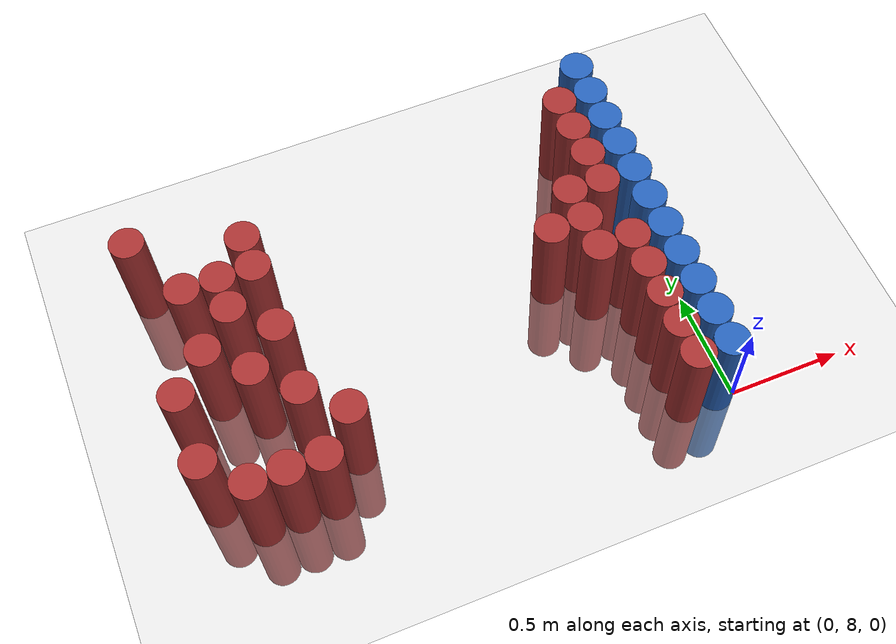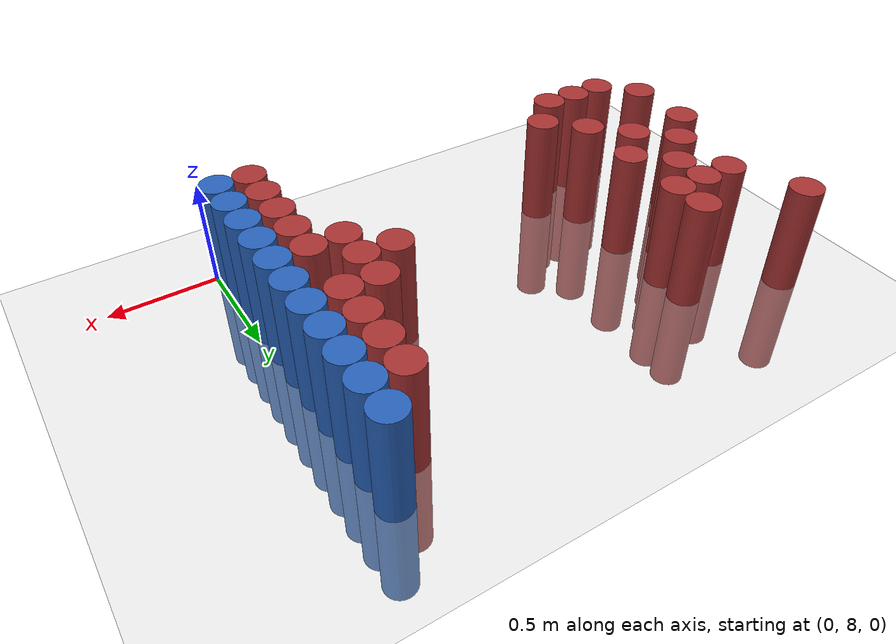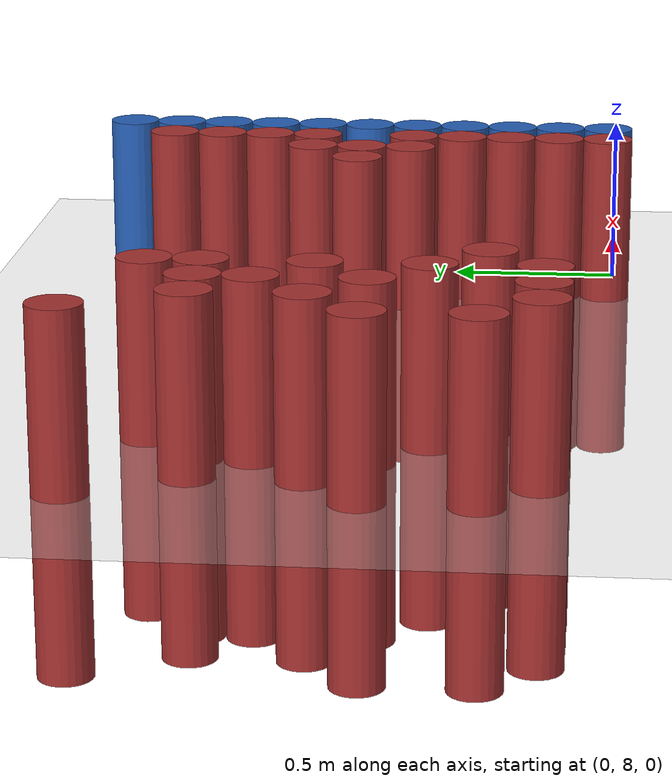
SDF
<sdf version="1.6">
 <world name="default">
  <model name="ground_plane">
   <static>1</static>
   <link name="link">
    <collision name="collision">
     <geometry><plane><normal>0 0 1</normal><size>100 100</size></plane></geometry>
     <surface><friction><ode><mu>100</mu><mu2>50</mu2></ode></friction></surface>
    </collision>
    <visual name="visual">
     <cast_shadows>0</cast_shadows>
     <geometry><plane><normal>0 0 1</normal><size>100 100</size></plane></geometry>
     <material>
      <script><uri>file://media/materials/scripts/gazebo.material</uri><name>Gazebo/Grey</name></script>
     </material>
    </visual>
   </link>
  </model>
  <model name="unit_cylinder_205">
   <static>1</static>
   <pose>-2.175000 8.325000 0.000000 0.000000 0.000000 0.000000</pose>
   <link name="link">
    <inertial>
     <mass>1</mass>
     <inertia><ixx>0.145833</ixx><ixy>0</ixy><ixz>0</ixz><iyy>0.145833</iyy><iyz>0</iyz><izz>0.125</izz></inertia>
    </inertial>
    <collision name="collision">
     <geometry><cylinder><radius>0.075000</radius><length>1</length></cylinder></geometry>
    </collision>
    <visual name="visual">
     <geometry><cylinder><radius>0.075000</radius><length>1</length></cylinder></geometry>
     <material>
      <ambient>0.648000 0.192000 0.192000 1</ambient>
      <diffuse>0.648000 0.192000 0.192000 1</diffuse>
     </material>
     <material>
      <script><name>Gazebo/Grey</name><uri>file://media/materials/scripts/gazebo.material</uri></script>
     </material>
    </visual>
    <sensor name="sensor_contact" type="contact"><contact><collision>collision</collision></contact></sensor>
   </link>
   <plugin filename="gz-sim-touchplugin-system" name="gz::sim::systems::TouchPlugin">
    <target>robot</target>
    <namespace>robot</namespace>
    <time>0.001</time>
    <enabled>true</enabled>
   </plugin>
  </model>
  <model name="unit_cylinder_206">
   <static>1</static>
   <pose>-2.175000 8.625000 0.000000 0.000000 0.000000 0.000000</pose>
   <link name="link">
    <inertial>
     <mass>1</mass>
     <inertia><ixx>0.145833</ixx><ixy>0</ixy><ixz>0</ixz><iyy>0.145833</iyy><iyz>0</iyz><izz>0.125</izz></inertia>
    </inertial>
    <collision name="collision">
     <geometry><cylinder><radius>0.075000</radius><length>1</length></cylinder></geometry>
    </collision>
    <visual name="visual">
     <geometry><cylinder><radius>0.075000</radius><length>1</length></cylinder></geometry>
     <material>
      <ambient>0.648000 0.192000 0.192000 1</ambient>
      <diffuse>0.648000 0.192000 0.192000 1</diffuse>
     </material>
     <material>
      <script><name>Gazebo/Grey</name><uri>file://media/materials/scripts/gazebo.material</uri></script>
     </material>
    </visual>
    <sensor name="sensor_contact" type="contact"><contact><collision>collision</collision></contact></sensor>
   </link>
   <plugin filename="gz-sim-touchplugin-system" name="gz::sim::systems::TouchPlugin">
    <target>robot</target>
    <namespace>robot</namespace>
    <time>0.001</time>
    <enabled>true</enabled>
   </plugin>
  </model>
  <model name="unit_cylinder_207">
   <static>1</static>
   <pose>-2.175000 9.375000 0.000000 0.000000 0.000000 0.000000</pose>
   <link name="link">
    <inertial>
     <mass>1</mass>
     <inertia><ixx>0.145833</ixx><ixy>0</ixy><ixz>0</ixz><iyy>0.145833</iyy><iyz>0</iyz><izz>0.125</izz></inertia>
    </inertial>
    <collision name="collision">
     <geometry><cylinder><radius>0.075000</radius><length>1</length></cylinder></geometry>
    </collision>
    <visual name="visual">
     <geometry><cylinder><radius>0.075000</radius><length>1</length></cylinder></geometry>
     <material>
      <ambient>0.648000 0.192000 0.192000 1</ambient>
      <diffuse>0.648000 0.192000 0.192000 1</diffuse>
     </material>
     <material>
      <script><name>Gazebo/Grey</name><uri>file://media/materials/scripts/gazebo.material</uri></script>
     </material>
    </visual>
    <sensor name="sensor_contact" type="contact"><contact><collision>collision</collision></contact></sensor>
   </link>
   <plugin filename="gz-sim-touchplugin-system" name="gz::sim::systems::TouchPlugin">
    <target>robot</target>
    <namespace>robot</namespace>
    <time>0.001</time>
    <enabled>true</enabled>
   </plugin>
  </model>
  <model name="unit_cylinder_210">
   <static>1</static>
   <pose>-2.025000 8.175000 0.000000 0.000000 0.000000 0.000000</pose>
   <link name="link">
    <inertial>
     <mass>1</mass>
     <inertia><ixx>0.145833</ixx><ixy>0</ixy><ixz>0</ixz><iyy>0.145833</iyy><iyz>0</iyz><izz>0.125</izz></inertia>
    </inertial>
    <collision name="collision">
     <geometry><cylinder><radius>0.075000</radius><length>1</length></cylinder></geometry>
    </collision>
    <visual name="visual">
     <geometry><cylinder><radius>0.075000</radius><length>1</length></cylinder></geometry>
     <material>
      <ambient>0.648000 0.192000 0.192000 1</ambient>
      <diffuse>0.648000 0.192000 0.192000 1</diffuse>
     </material>
     <material>
      <script><name>Gazebo/Grey</name><uri>file://media/materials/scripts/gazebo.material</uri></script>
     </material>
    </visual>
    <sensor name="sensor_contact" type="contact"><contact><collision>collision</collision></contact></sensor>
   </link>
   <plugin filename="gz-sim-touchplugin-system" name="gz::sim::systems::TouchPlugin">
    <target>robot</target>
    <namespace>robot</namespace>
    <time>0.001</time>
    <enabled>true</enabled>
   </plugin>
  </model>
  <model name="unit_cylinder_211">
   <static>1</static>
   <pose>-2.025000 8.775000 0.000000 0.000000 0.000000 0.000000</pose>
   <link name="link">
    <inertial>
     <mass>1</mass>
     <inertia><ixx>0.145833</ixx><ixy>0</ixy><ixz>0</ixz><iyy>0.145833</iyy><iyz>0</iyz><izz>0.125</izz></inertia>
    </inertial>
    <collision name="collision">
     <geometry><cylinder><radius>0.075000</radius><length>1</length></cylinder></geometry>
    </collision>
    <visual name="visual">
     <geometry><cylinder><radius>0.075000</radius><length>1</length></cylinder></geometry>
     <material>
      <ambient>0.648000 0.192000 0.192000 1</ambient>
      <diffuse>0.648000 0.192000 0.192000 1</diffuse>
     </material>
     <material>
      <script><name>Gazebo/Grey</name><uri>file://media/materials/scripts/gazebo.material</uri></script>
     </material>
    </visual>
    <sensor name="sensor_contact" type="contact"><contact><collision>collision</collision></contact></sensor>
   </link>
   <plugin filename="gz-sim-touchplugin-system" name="gz::sim::systems::TouchPlugin">
    <target>robot</target>
    <namespace>robot</namespace>
    <time>0.001</time>
    <enabled>true</enabled>
   </plugin>
  </model>
  <model name="unit_cylinder_212">
   <static>1</static>
   <pose>-2.025000 9.075000 0.000000 0.000000 0.000000 0.000000</pose>
   <link name="link">
    <inertial>
     <mass>1</mass>
     <inertia><ixx>0.145833</ixx><ixy>0</ixy><ixz>0</ixz><iyy>0.145833</iyy><iyz>0</iyz><izz>0.125</izz></inertia>
    </inertial>
    <collision name="collision">
     <geometry><cylinder><radius>0.075000</radius><length>1</length></cylinder></geometry>
    </collision>
    <visual name="visual">
     <geometry><cylinder><radius>0.075000</radius><length>1</length></cylinder></geometry>
     <material>
      <ambient>0.648000 0.192000 0.192000 1</ambient>
      <diffuse>0.648000 0.192000 0.192000 1</diffuse>
     </material>
     <material>
      <script><name>Gazebo/Grey</name><uri>file://media/materials/scripts/gazebo.material</uri></script>
     </material>
    </visual>
    <sensor name="sensor_contact" type="contact"><contact><collision>collision</collision></contact></sensor>
   </link>
   <plugin filename="gz-sim-touchplugin-system" name="gz::sim::systems::TouchPlugin">
    <target>robot</target>
    <namespace>robot</namespace>
    <time>0.001</time>
    <enabled>true</enabled>
   </plugin>
  </model>
  <model name="unit_cylinder_214">
   <static>1</static>
   <pose>-1.875000 8.175000 0.000000 0.000000 0.000000 0.000000</pose>
   <link name="link">
    <inertial>
     <mass>1</mass>
     <inertia><ixx>0.145833</ixx><ixy>0</ixy><ixz>0</ixz><iyy>0.145833</iyy><iyz>0</iyz><izz>0.125</izz></inertia>
    </inertial>
    <collision name="collision">
     <geometry><cylinder><radius>0.075000</radius><length>1</length></cylinder></geometry>
    </collision>
    <visual name="visual">
     <geometry><cylinder><radius>0.075000</radius><length>1</length></cylinder></geometry>
     <material>
      <ambient>0.648000 0.192000 0.192000 1</ambient>
      <diffuse>0.648000 0.192000 0.192000 1</diffuse>
     </material>
     <material>
      <script><name>Gazebo/Grey</name><uri>file://media/materials/scripts/gazebo.material</uri></script>
     </material>
    </visual>
    <sensor name="sensor_contact" type="contact"><contact><collision>collision</collision></contact></sensor>
   </link>
   <plugin filename="gz-sim-touchplugin-system" name="gz::sim::systems::TouchPlugin">
    <target>robot</target>
    <namespace>robot</namespace>
    <time>0.001</time>
    <enabled>true</enabled>
   </plugin>
  </model>
  <model name="unit_cylinder_215">
   <static>1</static>
   <pose>-1.875000 8.625000 0.000000 0.000000 0.000000 0.000000</pose>
   <link name="link">
    <inertial>
     <mass>1</mass>
     <inertia><ixx>0.145833</ixx><ixy>0</ixy><ixz>0</ixz><iyy>0.145833</iyy><iyz>0</iyz><izz>0.125</izz></inertia>
    </inertial>
    <collision name="collision">
     <geometry><cylinder><radius>0.075000</radius><length>1</length></cylinder></geometry>
    </collision>
    <visual name="visual">
     <geometry><cylinder><radius>0.075000</radius><length>1</length></cylinder></geometry>
     <material>
      <ambient>0.648000 0.192000 0.192000 1</ambient>
      <diffuse>0.648000 0.192000 0.192000 1</diffuse>
     </material>
     <material>
      <script><name>Gazebo/Grey</name><uri>file://media/materials/scripts/gazebo.material</uri></script>
     </material>
    </visual>
    <sensor name="sensor_contact" type="contact"><contact><collision>collision</collision></contact></sensor>
   </link>
   <plugin filename="gz-sim-touchplugin-system" name="gz::sim::systems::TouchPlugin">
    <target>robot</target>
    <namespace>robot</namespace>
    <time>0.001</time>
    <enabled>true</enabled>
   </plugin>
  </model>
  <model name="unit_cylinder_216">
   <static>1</static>
   <pose>-1.875000 8.925000 0.000000 0.000000 0.000000 0.000000</pose>
   <link name="link">
    <inertial>
     <mass>1</mass>
     <inertia><ixx>0.145833</ixx><ixy>0</ixy><ixz>0</ixz><iyy>0.145833</iyy><iyz>0</iyz><izz>0.125</izz></inertia>
    </inertial>
    <collision name="collision">
     <geometry><cylinder><radius>0.075000</radius><length>1</length></cylinder></geometry>
    </collision>
    <visual name="visual">
     <geometry><cylinder><radius>0.075000</radius><length>1</length></cylinder></geometry>
     <material>
      <ambient>0.648000 0.192000 0.192000 1</ambient>
      <diffuse>0.648000 0.192000 0.192000 1</diffuse>
     </material>
     <material>
      <script><name>Gazebo/Grey</name><uri>file://media/materials/scripts/gazebo.material</uri></script>
     </material>
    </visual>
    <sensor name="sensor_contact" type="contact"><contact><collision>collision</collision></contact></sensor>
   </link>
   <plugin filename="gz-sim-touchplugin-system" name="gz::sim::systems::TouchPlugin">
    <target>robot</target>
    <namespace>robot</namespace>
    <time>0.001</time>
    <enabled>true</enabled>
   </plugin>
  </model>
  <model name="unit_cylinder_217">
   <static>1</static>
   <pose>-1.875000 9.075000 0.000000 0.000000 0.000000 0.000000</pose>
   <link name="link">
    <inertial>
     <mass>1</mass>
     <inertia><ixx>0.145833</ixx><ixy>0</ixy><ixz>0</ixz><iyy>0.145833</iyy><iyz>0</iyz><izz>0.125</izz></inertia>
    </inertial>
    <collision name="collision">
     <geometry><cylinder><radius>0.075000</radius><length>1</length></cylinder></geometry>
    </collision>
    <visual name="visual">
     <geometry><cylinder><radius>0.075000</radius><length>1</length></cylinder></geometry>
     <material>
      <ambient>0.648000 0.192000 0.192000 1</ambient>
      <diffuse>0.648000 0.192000 0.192000 1</diffuse>
     </material>
     <material>
      <script><name>Gazebo/Grey</name><uri>file://media/materials/scripts/gazebo.material</uri></script>
     </material>
    </visual>
    <sensor name="sensor_contact" type="contact"><contact><collision>collision</collision></contact></sensor>
   </link>
   <plugin filename="gz-sim-touchplugin-system" name="gz::sim::systems::TouchPlugin">
    <target>robot</target>
    <namespace>robot</namespace>
    <time>0.001</time>
    <enabled>true</enabled>
   </plugin>
  </model>
  <model name="unit_cylinder_220">
   <static>1</static>
   <pose>-1.725000 8.175000 0.000000 0.000000 0.000000 0.000000</pose>
   <link name="link">
    <inertial>
     <mass>1</mass>
     <inertia><ixx>0.145833</ixx><ixy>0</ixy><ixz>0</ixz><iyy>0.145833</iyy><iyz>0</iyz><izz>0.125</izz></inertia>
    </inertial>
    <collision name="collision">
     <geometry><cylinder><radius>0.075000</radius><length>1</length></cylinder></geometry>
    </collision>
    <visual name="visual">
     <geometry><cylinder><radius>0.075000</radius><length>1</length></cylinder></geometry>
     <material>
      <ambient>0.648000 0.192000 0.192000 1</ambient>
      <diffuse>0.648000 0.192000 0.192000 1</diffuse>
     </material>
     <material>
      <script><name>Gazebo/Grey</name><uri>file://media/materials/scripts/gazebo.material</uri></script>
     </material>
    </visual>
    <sensor name="sensor_contact" type="contact"><contact><collision>collision</collision></contact></sensor>
   </link>
   <plugin filename="gz-sim-touchplugin-system" name="gz::sim::systems::TouchPlugin">
    <target>robot</target>
    <namespace>robot</namespace>
    <time>0.001</time>
    <enabled>true</enabled>
   </plugin>
  </model>
  <model name="unit_cylinder_221">
   <static>1</static>
   <pose>-1.725000 8.475000 0.000000 0.000000 0.000000 0.000000</pose>
   <link name="link">
    <inertial>
     <mass>1</mass>
     <inertia><ixx>0.145833</ixx><ixy>0</ixy><ixz>0</ixz><iyy>0.145833</iyy><iyz>0</iyz><izz>0.125</izz></inertia>
    </inertial>
    <collision name="collision">
     <geometry><cylinder><radius>0.075000</radius><length>1</length></cylinder></geometry>
    </collision>
    <visual name="visual">
     <geometry><cylinder><radius>0.075000</radius><length>1</length></cylinder></geometry>
     <material>
      <ambient>0.648000 0.192000 0.192000 1</ambient>
      <diffuse>0.648000 0.192000 0.192000 1</diffuse>
     </material>
     <material>
      <script><name>Gazebo/Grey</name><uri>file://media/materials/scripts/gazebo.material</uri></script>
     </material>
    </visual>
    <sensor name="sensor_contact" type="contact"><contact><collision>collision</collision></contact></sensor>
   </link>
   <plugin filename="gz-sim-touchplugin-system" name="gz::sim::systems::TouchPlugin">
    <target>robot</target>
    <namespace>robot</namespace>
    <time>0.001</time>
    <enabled>true</enabled>
   </plugin>
  </model>
  <model name="unit_cylinder_222">
   <static>1</static>
   <pose>-1.725000 8.775000 0.000000 0.000000 0.000000 0.000000</pose>
   <link name="link">
    <inertial>
     <mass>1</mass>
     <inertia><ixx>0.145833</ixx><ixy>0</ixy><ixz>0</ixz><iyy>0.145833</iyy><iyz>0</iyz><izz>0.125</izz></inertia>
    </inertial>
    <collision name="collision">
     <geometry><cylinder><radius>0.075000</radius><length>1</length></cylinder></geometry>
    </collision>
    <visual name="visual">
     <geometry><cylinder><radius>0.075000</radius><length>1</length></cylinder></geometry>
     <material>
      <ambient>0.648000 0.192000 0.192000 1</ambient>
      <diffuse>0.648000 0.192000 0.192000 1</diffuse>
     </material>
     <material>
      <script><name>Gazebo/Grey</name><uri>file://media/materials/scripts/gazebo.material</uri></script>
     </material>
    </visual>
    <sensor name="sensor_contact" type="contact"><contact><collision>collision</collision></contact></sensor>
   </link>
   <plugin filename="gz-sim-touchplugin-system" name="gz::sim::systems::TouchPlugin">
    <target>robot</target>
    <namespace>robot</namespace>
    <time>0.001</time>
    <enabled>true</enabled>
   </plugin>
  </model>
  <model name="unit_cylinder_223">
   <static>1</static>
   <pose>-1.725000 9.075000 0.000000 0.000000 0.000000 0.000000</pose>
   <link name="link">
    <inertial>
     <mass>1</mass>
     <inertia><ixx>0.145833</ixx><ixy>0</ixy><ixz>0</ixz><iyy>0.145833</iyy><iyz>0</iyz><izz>0.125</izz></inertia>
    </inertial>
    <collision name="collision">
     <geometry><cylinder><radius>0.075000</radius><length>1</length></cylinder></geometry>
    </collision>
    <visual name="visual">
     <geometry><cylinder><radius>0.075000</radius><length>1</length></cylinder></geometry>
     <material>
      <ambient>0.648000 0.192000 0.192000 1</ambient>
      <diffuse>0.648000 0.192000 0.192000 1</diffuse>
     </material>
     <material>
      <script><name>Gazebo/Grey</name><uri>file://media/materials/scripts/gazebo.material</uri></script>
     </material>
    </visual>
    <sensor name="sensor_contact" type="contact"><contact><collision>collision</collision></contact></sensor>
   </link>
   <plugin filename="gz-sim-touchplugin-system" name="gz::sim::systems::TouchPlugin">
    <target>robot</target>
    <namespace>robot</namespace>
    <time>0.001</time>
    <enabled>true</enabled>
   </plugin>
  </model>
  <model name="unit_cylinder_224">
   <static>1</static>
   <pose>-1.725000 9.225000 0.000000 0.000000 0.000000 0.000000</pose>
   <link name="link">
    <inertial>
     <mass>1</mass>
     <inertia><ixx>0.145833</ixx><ixy>0</ixy><ixz>0</ixz><iyy>0.145833</iyy><iyz>0</iyz><izz>0.125</izz></inertia>
    </inertial>
    <collision name="collision">
     <geometry><cylinder><radius>0.075000</radius><length>1</length></cylinder></geometry>
    </collision>
    <visual name="visual">
     <geometry><cylinder><radius>0.075000</radius><length>1</length></cylinder></geometry>
     <material>
      <ambient>0.648000 0.192000 0.192000 1</ambient>
      <diffuse>0.648000 0.192000 0.192000 1</diffuse>
     </material>
     <material>
      <script><name>Gazebo/Grey</name><uri>file://media/materials/scripts/gazebo.material</uri></script>
     </material>
    </visual>
    <sensor name="sensor_contact" type="contact"><contact><collision>collision</collision></contact></sensor>
   </link>
   <plugin filename="gz-sim-touchplugin-system" name="gz::sim::systems::TouchPlugin">
    <target>robot</target>
    <namespace>robot</namespace>
    <time>0.001</time>
    <enabled>true</enabled>
   </plugin>
  </model>
  <model name="unit_cylinder_226">
   <static>1</static>
   <pose>-1.575000 8.325000 0.000000 0.000000 0.000000 0.000000</pose>
   <link name="link">
    <inertial>
     <mass>1</mass>
     <inertia><ixx>0.145833</ixx><ixy>0</ixy><ixz>0</ixz><iyy>0.145833</iyy><iyz>0</iyz><izz>0.125</izz></inertia>
    </inertial>
    <collision name="collision">
     <geometry><cylinder><radius>0.075000</radius><length>1</length></cylinder></geometry>
    </collision>
    <visual name="visual">
     <geometry><cylinder><radius>0.075000</radius><length>1</length></cylinder></geometry>
     <material>
      <ambient>0.648000 0.192000 0.192000 1</ambient>
      <diffuse>0.648000 0.192000 0.192000 1</diffuse>
     </material>
     <material>
      <script><name>Gazebo/Grey</name><uri>file://media/materials/scripts/gazebo.material</uri></script>
     </material>
    </visual>
    <sensor name="sensor_contact" type="contact"><contact><collision>collision</collision></contact></sensor>
   </link>
   <plugin filename="gz-sim-touchplugin-system" name="gz::sim::systems::TouchPlugin">
    <target>robot</target>
    <namespace>robot</namespace>
    <time>0.001</time>
    <enabled>true</enabled>
   </plugin>
  </model>
  <model name="unit_cylinder_256">
   <static>1</static>
   <pose>-0.525000 8.775000 0.000000 0.000000 0.000000 0.000000</pose>
   <link name="link">
    <inertial>
     <mass>1</mass>
     <inertia><ixx>0.145833</ixx><ixy>0</ixy><ixz>0</ixz><iyy>0.145833</iyy><iyz>0</iyz><izz>0.125</izz></inertia>
    </inertial>
    <collision name="collision">
     <geometry><cylinder><radius>0.075000</radius><length>1</length></cylinder></geometry>
    </collision>
    <visual name="visual">
     <geometry><cylinder><radius>0.075000</radius><length>1</length></cylinder></geometry>
     <material>
      <ambient>0.648000 0.192000 0.192000 1</ambient>
      <diffuse>0.648000 0.192000 0.192000 1</diffuse>
     </material>
     <material>
      <script><name>Gazebo/Grey</name><uri>file://media/materials/scripts/gazebo.material</uri></script>
     </material>
    </visual>
    <sensor name="sensor_contact" type="contact"><contact><collision>collision</collision></contact></sensor>
   </link>
   <plugin filename="gz-sim-touchplugin-system" name="gz::sim::systems::TouchPlugin">
    <target>robot</target>
    <namespace>robot</namespace>
    <time>0.001</time>
    <enabled>true</enabled>
   </plugin>
  </model>
  <model name="unit_cylinder_260">
   <static>1</static>
   <pose>-0.375000 8.625000 0.000000 0.000000 0.000000 0.000000</pose>
   <link name="link">
    <inertial>
     <mass>1</mass>
     <inertia><ixx>0.145833</ixx><ixy>0</ixy><ixz>0</ixz><iyy>0.145833</iyy><iyz>0</iyz><izz>0.125</izz></inertia>
    </inertial>
    <collision name="collision">
     <geometry><cylinder><radius>0.075000</radius><length>1</length></cylinder></geometry>
    </collision>
    <visual name="visual">
     <geometry><cylinder><radius>0.075000</radius><length>1</length></cylinder></geometry>
     <material>
      <ambient>0.648000 0.192000 0.192000 1</ambient>
      <diffuse>0.648000 0.192000 0.192000 1</diffuse>
     </material>
     <material>
      <script><name>Gazebo/Grey</name><uri>file://media/materials/scripts/gazebo.material</uri></script>
     </material>
    </visual>
    <sensor name="sensor_contact" type="contact"><contact><collision>collision</collision></contact></sensor>
   </link>
   <plugin filename="gz-sim-touchplugin-system" name="gz::sim::systems::TouchPlugin">
    <target>robot</target>
    <namespace>robot</namespace>
    <time>0.001</time>
    <enabled>true</enabled>
   </plugin>
  </model>
  <model name="unit_cylinder_261">
   <static>1</static>
   <pose>-0.375000 8.775000 0.000000 0.000000 0.000000 0.000000</pose>
   <link name="link">
    <inertial>
     <mass>1</mass>
     <inertia><ixx>0.145833</ixx><ixy>0</ixy><ixz>0</ixz><iyy>0.145833</iyy><iyz>0</iyz><izz>0.125</izz></inertia>
    </inertial>
    <collision name="collision">
     <geometry><cylinder><radius>0.075000</radius><length>1</length></cylinder></geometry>
    </collision>
    <visual name="visual">
     <geometry><cylinder><radius>0.075000</radius><length>1</length></cylinder></geometry>
     <material>
      <ambient>0.648000 0.192000 0.192000 1</ambient>
      <diffuse>0.648000 0.192000 0.192000 1</diffuse>
     </material>
     <material>
      <script><name>Gazebo/Grey</name><uri>file://media/materials/scripts/gazebo.material</uri></script>
     </material>
    </visual>
    <sensor name="sensor_contact" type="contact"><contact><collision>collision</collision></contact></sensor>
   </link>
   <plugin filename="gz-sim-touchplugin-system" name="gz::sim::systems::TouchPlugin">
    <target>robot</target>
    <namespace>robot</namespace>
    <time>0.001</time>
    <enabled>true</enabled>
   </plugin>
  </model>
  <model name="unit_cylinder_262">
   <static>1</static>
   <pose>-0.375000 8.925000 0.000000 0.000000 0.000000 0.000000</pose>
   <link name="link">
    <inertial>
     <mass>1</mass>
     <inertia><ixx>0.145833</ixx><ixy>0</ixy><ixz>0</ixz><iyy>0.145833</iyy><iyz>0</iyz><izz>0.125</izz></inertia>
    </inertial>
    <collision name="collision">
     <geometry><cylinder><radius>0.075000</radius><length>1</length></cylinder></geometry>
    </collision>
    <visual name="visual">
     <geometry><cylinder><radius>0.075000</radius><length>1</length></cylinder></geometry>
     <material>
      <ambient>0.648000 0.192000 0.192000 1</ambient>
      <diffuse>0.648000 0.192000 0.192000 1</diffuse>
     </material>
     <material>
      <script><name>Gazebo/Grey</name><uri>file://media/materials/scripts/gazebo.material</uri></script>
     </material>
    </visual>
    <sensor name="sensor_contact" type="contact"><contact><collision>collision</collision></contact></sensor>
   </link>
   <plugin filename="gz-sim-touchplugin-system" name="gz::sim::systems::TouchPlugin">
    <target>robot</target>
    <namespace>robot</namespace>
    <time>0.001</time>
    <enabled>true</enabled>
   </plugin>
  </model>
  <model name="unit_cylinder_275">
   <static>1</static>
   <pose>-0.225000 8.025000 0.000000 0.000000 0.000000 0.000000</pose>
   <link name="link">
    <inertial>
     <mass>1</mass>
     <inertia><ixx>0.145833</ixx><ixy>0</ixy><ixz>0</ixz><iyy>0.145833</iyy><iyz>0</iyz><izz>0.125</izz></inertia>
    </inertial>
    <collision name="collision">
     <geometry><cylinder><radius>0.075000</radius><length>1</length></cylinder></geometry>
    </collision>
    <visual name="visual">
     <geometry><cylinder><radius>0.075000</radius><length>1</length></cylinder></geometry>
     <material>
      <ambient>0.648000 0.192000 0.192000 1</ambient>
      <diffuse>0.648000 0.192000 0.192000 1</diffuse>
     </material>
     <material>
      <script><name>Gazebo/Grey</name><uri>file://media/materials/scripts/gazebo.material</uri></script>
     </material>
    </visual>
    <sensor name="sensor_contact" type="contact"><contact><collision>collision</collision></contact></sensor>
   </link>
   <plugin filename="gz-sim-touchplugin-system" name="gz::sim::systems::TouchPlugin">
    <target>robot</target>
    <namespace>robot</namespace>
    <time>0.001</time>
    <enabled>true</enabled>
   </plugin>
  </model>
  <model name="unit_cylinder_276">
   <static>1</static>
   <pose>-0.225000 8.175000 0.000000 0.000000 0.000000 0.000000</pose>
   <link name="link">
    <inertial>
     <mass>1</mass>
     <inertia><ixx>0.145833</ixx><ixy>0</ixy><ixz>0</ixz><iyy>0.145833</iyy><iyz>0</iyz><izz>0.125</izz></inertia>
    </inertial>
    <collision name="collision">
     <geometry><cylinder><radius>0.075000</radius><length>1</length></cylinder></geometry>
    </collision>
    <visual name="visual">
     <geometry><cylinder><radius>0.075000</radius><length>1</length></cylinder></geometry>
     <material>
      <ambient>0.648000 0.192000 0.192000 1</ambient>
      <diffuse>0.648000 0.192000 0.192000 1</diffuse>
     </material>
     <material>
      <script><name>Gazebo/Grey</name><uri>file://media/materials/scripts/gazebo.material</uri></script>
     </material>
    </visual>
    <sensor name="sensor_contact" type="contact"><contact><collision>collision</collision></contact></sensor>
   </link>
   <plugin filename="gz-sim-touchplugin-system" name="gz::sim::systems::TouchPlugin">
    <target>robot</target>
    <namespace>robot</namespace>
    <time>0.001</time>
    <enabled>true</enabled>
   </plugin>
  </model>
  <model name="unit_cylinder_277">
   <static>1</static>
   <pose>-0.225000 8.325000 0.000000 0.000000 0.000000 0.000000</pose>
   <link name="link">
    <inertial>
     <mass>1</mass>
     <inertia><ixx>0.145833</ixx><ixy>0</ixy><ixz>0</ixz><iyy>0.145833</iyy><iyz>0</iyz><izz>0.125</izz></inertia>
    </inertial>
    <collision name="collision">
     <geometry><cylinder><radius>0.075000</radius><length>1</length></cylinder></geometry>
    </collision>
    <visual name="visual">
     <geometry><cylinder><radius>0.075000</radius><length>1</length></cylinder></geometry>
     <material>
      <ambient>0.648000 0.192000 0.192000 1</ambient>
      <diffuse>0.648000 0.192000 0.192000 1</diffuse>
     </material>
     <material>
      <script><name>Gazebo/Grey</name><uri>file://media/materials/scripts/gazebo.material</uri></script>
     </material>
    </visual>
    <sensor name="sensor_contact" type="contact"><contact><collision>collision</collision></contact></sensor>
   </link>
   <plugin filename="gz-sim-touchplugin-system" name="gz::sim::systems::TouchPlugin">
    <target>robot</target>
    <namespace>robot</namespace>
    <time>0.001</time>
    <enabled>true</enabled>
   </plugin>
  </model>
  <model name="unit_cylinder_278">
   <static>1</static>
   <pose>-0.225000 8.475000 0.000000 0.000000 0.000000 0.000000</pose>
   <link name="link">
    <inertial>
     <mass>1</mass>
     <inertia><ixx>0.145833</ixx><ixy>0</ixy><ixz>0</ixz><iyy>0.145833</iyy><iyz>0</iyz><izz>0.125</izz></inertia>
    </inertial>
    <collision name="collision">
     <geometry><cylinder><radius>0.075000</radius><length>1</length></cylinder></geometry>
    </collision>
    <visual name="visual">
     <geometry><cylinder><radius>0.075000</radius><length>1</length></cylinder></geometry>
     <material>
      <ambient>0.648000 0.192000 0.192000 1</ambient>
      <diffuse>0.648000 0.192000 0.192000 1</diffuse>
     </material>
     <material>
      <script><name>Gazebo/Grey</name><uri>file://media/materials/scripts/gazebo.material</uri></script>
     </material>
    </visual>
    <sensor name="sensor_contact" type="contact"><contact><collision>collision</collision></contact></sensor>
   </link>
   <plugin filename="gz-sim-touchplugin-system" name="gz::sim::systems::TouchPlugin">
    <target>robot</target>
    <namespace>robot</namespace>
    <time>0.001</time>
    <enabled>true</enabled>
   </plugin>
  </model>
  <model name="unit_cylinder_279">
   <static>1</static>
   <pose>-0.225000 8.625000 0.000000 0.000000 0.000000 0.000000</pose>
   <link name="link">
    <inertial>
     <mass>1</mass>
     <inertia><ixx>0.145833</ixx><ixy>0</ixy><ixz>0</ixz><iyy>0.145833</iyy><iyz>0</iyz><izz>0.125</izz></inertia>
    </inertial>
    <collision name="collision">
     <geometry><cylinder><radius>0.075000</radius><length>1</length></cylinder></geometry>
    </collision>
    <visual name="visual">
     <geometry><cylinder><radius>0.075000</radius><length>1</length></cylinder></geometry>
     <material>
      <ambient>0.648000 0.192000 0.192000 1</ambient>
      <diffuse>0.648000 0.192000 0.192000 1</diffuse>
     </material>
     <material>
      <script><name>Gazebo/Grey</name><uri>file://media/materials/scripts/gazebo.material</uri></script>
     </material>
    </visual>
    <sensor name="sensor_contact" type="contact"><contact><collision>collision</collision></contact></sensor>
   </link>
   <plugin filename="gz-sim-touchplugin-system" name="gz::sim::systems::TouchPlugin">
    <target>robot</target>
    <namespace>robot</namespace>
    <time>0.001</time>
    <enabled>true</enabled>
   </plugin>
  </model>
  <model name="unit_cylinder_280">
   <static>1</static>
   <pose>-0.225000 8.925000 0.000000 0.000000 0.000000 0.000000</pose>
   <link name="link">
    <inertial>
     <mass>1</mass>
     <inertia><ixx>0.145833</ixx><ixy>0</ixy><ixz>0</ixz><iyy>0.145833</iyy><iyz>0</iyz><izz>0.125</izz></inertia>
    </inertial>
    <collision name="collision">
     <geometry><cylinder><radius>0.075000</radius><length>1</length></cylinder></geometry>
    </collision>
    <visual name="visual">
     <geometry><cylinder><radius>0.075000</radius><length>1</length></cylinder></geometry>
     <material>
      <ambient>0.648000 0.192000 0.192000 1</ambient>
      <diffuse>0.648000 0.192000 0.192000 1</diffuse>
     </material>
     <material>
      <script><name>Gazebo/Grey</name><uri>file://media/materials/scripts/gazebo.material</uri></script>
     </material>
    </visual>
    <sensor name="sensor_contact" type="contact"><contact><collision>collision</collision></contact></sensor>
   </link>
   <plugin filename="gz-sim-touchplugin-system" name="gz::sim::systems::TouchPlugin">
    <target>robot</target>
    <namespace>robot</namespace>
    <time>0.001</time>
    <enabled>true</enabled>
   </plugin>
  </model>
  <model name="unit_cylinder_281">
   <static>1</static>
   <pose>-0.225000 9.075000 0.000000 0.000000 0.000000 0.000000</pose>
   <link name="link">
    <inertial>
     <mass>1</mass>
     <inertia><ixx>0.145833</ixx><ixy>0</ixy><ixz>0</ixz><iyy>0.145833</iyy><iyz>0</iyz><izz>0.125</izz></inertia>
    </inertial>
    <collision name="collision">
     <geometry><cylinder><radius>0.075000</radius><length>1</length></cylinder></geometry>
    </collision>
    <visual name="visual">
     <geometry><cylinder><radius>0.075000</radius><length>1</length></cylinder></geometry>
     <material>
      <ambient>0.648000 0.192000 0.192000 1</ambient>
      <diffuse>0.648000 0.192000 0.192000 1</diffuse>
     </material>
     <material>
      <script><name>Gazebo/Grey</name><uri>file://media/materials/scripts/gazebo.material</uri></script>
     </material>
    </visual>
    <sensor name="sensor_contact" type="contact"><contact><collision>collision</collision></contact></sensor>
   </link>
   <plugin filename="gz-sim-touchplugin-system" name="gz::sim::systems::TouchPlugin">
    <target>robot</target>
    <namespace>robot</namespace>
    <time>0.001</time>
    <enabled>true</enabled>
   </plugin>
  </model>
  <model name="unit_cylinder_282">
   <static>1</static>
   <pose>-0.225000 9.225000 0.000000 0.000000 0.000000 0.000000</pose>
   <link name="link">
    <inertial>
     <mass>1</mass>
     <inertia><ixx>0.145833</ixx><ixy>0</ixy><ixz>0</ixz><iyy>0.145833</iyy><iyz>0</iyz><izz>0.125</izz></inertia>
    </inertial>
    <collision name="collision">
     <geometry><cylinder><radius>0.075000</radius><length>1</length></cylinder></geometry>
    </collision>
    <visual name="visual">
     <geometry><cylinder><radius>0.075000</radius><length>1</length></cylinder></geometry>
     <material>
      <ambient>0.648000 0.192000 0.192000 1</ambient>
      <diffuse>0.648000 0.192000 0.192000 1</diffuse>
     </material>
     <material>
      <script><name>Gazebo/Grey</name><uri>file://media/materials/scripts/gazebo.material</uri></script>
     </material>
    </visual>
    <sensor name="sensor_contact" type="contact"><contact><collision>collision</collision></contact></sensor>
   </link>
   <plugin filename="gz-sim-touchplugin-system" name="gz::sim::systems::TouchPlugin">
    <target>robot</target>
    <namespace>robot</namespace>
    <time>0.001</time>
    <enabled>true</enabled>
   </plugin>
  </model>
  <model name="unit_cylinder_283">
   <static>1</static>
   <pose>-0.225000 9.375000 0.000000 0.000000 0.000000 0.000000</pose>
   <link name="link">
    <inertial>
     <mass>1</mass>
     <inertia><ixx>0.145833</ixx><ixy>0</ixy><ixz>0</ixz><iyy>0.145833</iyy><iyz>0</iyz><izz>0.125</izz></inertia>
    </inertial>
    <collision name="collision">
     <geometry><cylinder><radius>0.075000</radius><length>1</length></cylinder></geometry>
    </collision>
    <visual name="visual">
     <geometry><cylinder><radius>0.075000</radius><length>1</length></cylinder></geometry>
     <material>
      <ambient>0.648000 0.192000 0.192000 1</ambient>
      <diffuse>0.648000 0.192000 0.192000 1</diffuse>
     </material>
     <material>
      <script><name>Gazebo/Grey</name><uri>file://media/materials/scripts/gazebo.material</uri></script>
     </material>
    </visual>
    <sensor name="sensor_contact" type="contact"><contact><collision>collision</collision></contact></sensor>
   </link>
   <plugin filename="gz-sim-touchplugin-system" name="gz::sim::systems::TouchPlugin">
    <target>robot</target>
    <namespace>robot</namespace>
    <time>0.001</time>
    <enabled>true</enabled>
   </plugin>
  </model>
  <model name="unit_cylinder_303">
   <static>1</static>
   <pose>-0.075000 8.025000 0.000000 0.000000 0.000000 0.000000</pose>
   <link name="link">
    <inertial>
     <mass>1</mass>
     <inertia><ixx>0.145833</ixx><ixy>0</ixy><ixz>0</ixz><iyy>0.145833</iyy><iyz>0</iyz><izz>0.125</izz></inertia>
    </inertial>
    <collision name="collision">
     <geometry><cylinder><radius>0.075000</radius><length>1</length></cylinder></geometry>
    </collision>
    <visual name="visual">
     <geometry><cylinder><radius>0.075000</radius><length>1</length></cylinder></geometry>
     <material>
      <ambient>0.152000 0.379000 0.720000 1</ambient>
      <diffuse>0.152000 0.379000 0.720000 1</diffuse>
     </material>
     <material>
      <script><name>Gazebo/Grey</name><uri>file://media/materials/scripts/gazebo.material</uri></script>
     </material>
    </visual>
    <sensor name="sensor_contact" type="contact"><contact><collision>collision</collision></contact></sensor>
   </link>
   <plugin filename="gz-sim-touchplugin-system" name="gz::sim::systems::TouchPlugin">
    <target>robot</target>
    <namespace>robot</namespace>
    <time>0.001</time>
    <enabled>true</enabled>
   </plugin>
  </model>
  <model name="unit_cylinder_304">
   <static>1</static>
   <pose>-0.075000 8.175000 0.000000 0.000000 0.000000 0.000000</pose>
   <link name="link">
    <inertial>
     <mass>1</mass>
     <inertia><ixx>0.145833</ixx><ixy>0</ixy><ixz>0</ixz><iyy>0.145833</iyy><iyz>0</iyz><izz>0.125</izz></inertia>
    </inertial>
    <collision name="collision">
     <geometry><cylinder><radius>0.075000</radius><length>1</length></cylinder></geometry>
    </collision>
    <visual name="visual">
     <geometry><cylinder><radius>0.075000</radius><length>1</length></cylinder></geometry>
     <material>
      <ambient>0.152000 0.379000 0.720000 1</ambient>
      <diffuse>0.152000 0.379000 0.720000 1</diffuse>
     </material>
     <material>
      <script><name>Gazebo/Grey</name><uri>file://media/materials/scripts/gazebo.material</uri></script>
     </material>
    </visual>
    <sensor name="sensor_contact" type="contact"><contact><collision>collision</collision></contact></sensor>
   </link>
   <plugin filename="gz-sim-touchplugin-system" name="gz::sim::systems::TouchPlugin">
    <target>robot</target>
    <namespace>robot</namespace>
    <time>0.001</time>
    <enabled>true</enabled>
   </plugin>
  </model>
  <model name="unit_cylinder_305">
   <static>1</static>
   <pose>-0.075000 8.325000 0.000000 0.000000 0.000000 0.000000</pose>
   <link name="link">
    <inertial>
     <mass>1</mass>
     <inertia><ixx>0.145833</ixx><ixy>0</ixy><ixz>0</ixz><iyy>0.145833</iyy><iyz>0</iyz><izz>0.125</izz></inertia>
    </inertial>
    <collision name="collision">
     <geometry><cylinder><radius>0.075000</radius><length>1</length></cylinder></geometry>
    </collision>
    <visual name="visual">
     <geometry><cylinder><radius>0.075000</radius><length>1</length></cylinder></geometry>
     <material>
      <ambient>0.152000 0.379000 0.720000 1</ambient>
      <diffuse>0.152000 0.379000 0.720000 1</diffuse>
     </material>
     <material>
      <script><name>Gazebo/Grey</name><uri>file://media/materials/scripts/gazebo.material</uri></script>
     </material>
    </visual>
    <sensor name="sensor_contact" type="contact"><contact><collision>collision</collision></contact></sensor>
   </link>
   <plugin filename="gz-sim-touchplugin-system" name="gz::sim::systems::TouchPlugin">
    <target>robot</target>
    <namespace>robot</namespace>
    <time>0.001</time>
    <enabled>true</enabled>
   </plugin>
  </model>
  <model name="unit_cylinder_306">
   <static>1</static>
   <pose>-0.075000 8.475000 0.000000 0.000000 0.000000 0.000000</pose>
   <link name="link">
    <inertial>
     <mass>1</mass>
     <inertia><ixx>0.145833</ixx><ixy>0</ixy><ixz>0</ixz><iyy>0.145833</iyy><iyz>0</iyz><izz>0.125</izz></inertia>
    </inertial>
    <collision name="collision">
     <geometry><cylinder><radius>0.075000</radius><length>1</length></cylinder></geometry>
    </collision>
    <visual name="visual">
     <geometry><cylinder><radius>0.075000</radius><length>1</length></cylinder></geometry>
     <material>
      <ambient>0.152000 0.379000 0.720000 1</ambient>
      <diffuse>0.152000 0.379000 0.720000 1</diffuse>
     </material>
     <material>
      <script><name>Gazebo/Grey</name><uri>file://media/materials/scripts/gazebo.material</uri></script>
     </material>
    </visual>
    <sensor name="sensor_contact" type="contact"><contact><collision>collision</collision></contact></sensor>
   </link>
   <plugin filename="gz-sim-touchplugin-system" name="gz::sim::systems::TouchPlugin">
    <target>robot</target>
    <namespace>robot</namespace>
    <time>0.001</time>
    <enabled>true</enabled>
   </plugin>
  </model>
  <model name="unit_cylinder_307">
   <static>1</static>
   <pose>-0.075000 8.625000 0.000000 0.000000 0.000000 0.000000</pose>
   <link name="link">
    <inertial>
     <mass>1</mass>
     <inertia><ixx>0.145833</ixx><ixy>0</ixy><ixz>0</ixz><iyy>0.145833</iyy><iyz>0</iyz><izz>0.125</izz></inertia>
    </inertial>
    <collision name="collision">
     <geometry><cylinder><radius>0.075000</radius><length>1</length></cylinder></geometry>
    </collision>
    <visual name="visual">
     <geometry><cylinder><radius>0.075000</radius><length>1</length></cylinder></geometry>
     <material>
      <ambient>0.152000 0.379000 0.720000 1</ambient>
      <diffuse>0.152000 0.379000 0.720000 1</diffuse>
     </material>
     <material>
      <script><name>Gazebo/Grey</name><uri>file://media/materials/scripts/gazebo.material</uri></script>
     </material>
    </visual>
    <sensor name="sensor_contact" type="contact"><contact><collision>collision</collision></contact></sensor>
   </link>
   <plugin filename="gz-sim-touchplugin-system" name="gz::sim::systems::TouchPlugin">
    <target>robot</target>
    <namespace>robot</namespace>
    <time>0.001</time>
    <enabled>true</enabled>
   </plugin>
  </model>
  <model name="unit_cylinder_308">
   <static>1</static>
   <pose>-0.075000 8.775000 0.000000 0.000000 0.000000 0.000000</pose>
   <link name="link">
    <inertial>
     <mass>1</mass>
     <inertia><ixx>0.145833</ixx><ixy>0</ixy><ixz>0</ixz><iyy>0.145833</iyy><iyz>0</iyz><izz>0.125</izz></inertia>
    </inertial>
    <collision name="collision">
     <geometry><cylinder><radius>0.075000</radius><length>1</length></cylinder></geometry>
    </collision>
    <visual name="visual">
     <geometry><cylinder><radius>0.075000</radius><length>1</length></cylinder></geometry>
     <material>
      <ambient>0.152000 0.379000 0.720000 1</ambient>
      <diffuse>0.152000 0.379000 0.720000 1</diffuse>
     </material>
     <material>
      <script><name>Gazebo/Grey</name><uri>file://media/materials/scripts/gazebo.material</uri></script>
     </material>
    </visual>
    <sensor name="sensor_contact" type="contact"><contact><collision>collision</collision></contact></sensor>
   </link>
   <plugin filename="gz-sim-touchplugin-system" name="gz::sim::systems::TouchPlugin">
    <target>robot</target>
    <namespace>robot</namespace>
    <time>0.001</time>
    <enabled>true</enabled>
   </plugin>
  </model>
  <model name="unit_cylinder_309">
   <static>1</static>
   <pose>-0.075000 8.925000 0.000000 0.000000 0.000000 0.000000</pose>
   <link name="link">
    <inertial>
     <mass>1</mass>
     <inertia><ixx>0.145833</ixx><ixy>0</ixy><ixz>0</ixz><iyy>0.145833</iyy><iyz>0</iyz><izz>0.125</izz></inertia>
    </inertial>
    <collision name="collision">
     <geometry><cylinder><radius>0.075000</radius><length>1</length></cylinder></geometry>
    </collision>
    <visual name="visual">
     <geometry><cylinder><radius>0.075000</radius><length>1</length></cylinder></geometry>
     <material>
      <ambient>0.152000 0.379000 0.720000 1</ambient>
      <diffuse>0.152000 0.379000 0.720000 1</diffuse>
     </material>
     <material>
      <script><name>Gazebo/Grey</name><uri>file://media/materials/scripts/gazebo.material</uri></script>
     </material>
    </visual>
    <sensor name="sensor_contact" type="contact"><contact><collision>collision</collision></contact></sensor>
   </link>
   <plugin filename="gz-sim-touchplugin-system" name="gz::sim::systems::TouchPlugin">
    <target>robot</target>
    <namespace>robot</namespace>
    <time>0.001</time>
    <enabled>true</enabled>
   </plugin>
  </model>
  <model name="unit_cylinder_310">
   <static>1</static>
   <pose>-0.075000 9.075000 0.000000 0.000000 0.000000 0.000000</pose>
   <link name="link">
    <inertial>
     <mass>1</mass>
     <inertia><ixx>0.145833</ixx><ixy>0</ixy><ixz>0</ixz><iyy>0.145833</iyy><iyz>0</iyz><izz>0.125</izz></inertia>
    </inertial>
    <collision name="collision">
     <geometry><cylinder><radius>0.075000</radius><length>1</length></cylinder></geometry>
    </collision>
    <visual name="visual">
     <geometry><cylinder><radius>0.075000</radius><length>1</length></cylinder></geometry>
     <material>
      <ambient>0.152000 0.379000 0.720000 1</ambient>
      <diffuse>0.152000 0.379000 0.720000 1</diffuse>
     </material>
     <material>
      <script><name>Gazebo/Grey</name><uri>file://media/materials/scripts/gazebo.material</uri></script>
     </material>
    </visual>
    <sensor name="sensor_contact" type="contact"><contact><collision>collision</collision></contact></sensor>
   </link>
   <plugin filename="gz-sim-touchplugin-system" name="gz::sim::systems::TouchPlugin">
    <target>robot</target>
    <namespace>robot</namespace>
    <time>0.001</time>
    <enabled>true</enabled>
   </plugin>
  </model>
  <model name="unit_cylinder_311">
   <static>1</static>
   <pose>-0.075000 9.225000 0.000000 0.000000 0.000000 0.000000</pose>
   <link name="link">
    <inertial>
     <mass>1</mass>
     <inertia><ixx>0.145833</ixx><ixy>0</ixy><ixz>0</ixz><iyy>0.145833</iyy><iyz>0</iyz><izz>0.125</izz></inertia>
    </inertial>
    <collision name="collision">
     <geometry><cylinder><radius>0.075000</radius><length>1</length></cylinder></geometry>
    </collision>
    <visual name="visual">
     <geometry><cylinder><radius>0.075000</radius><length>1</length></cylinder></geometry>
     <material>
      <ambient>0.152000 0.379000 0.720000 1</ambient>
      <diffuse>0.152000 0.379000 0.720000 1</diffuse>
     </material>
     <material>
      <script><name>Gazebo/Grey</name><uri>file://media/materials/scripts/gazebo.material</uri></script>
     </material>
    </visual>
    <sensor name="sensor_contact" type="contact"><contact><collision>collision</collision></contact></sensor>
   </link>
   <plugin filename="gz-sim-touchplugin-system" name="gz::sim::systems::TouchPlugin">
    <target>robot</target>
    <namespace>robot</namespace>
    <time>0.001</time>
    <enabled>true</enabled>
   </plugin>
  </model>
  <model name="unit_cylinder_312">
   <static>1</static>
   <pose>-0.075000 9.375000 0.000000 0.000000 0.000000 0.000000</pose>
   <link name="link">
    <inertial>
     <mass>1</mass>
     <inertia><ixx>0.145833</ixx><ixy>0</ixy><ixz>0</ixz><iyy>0.145833</iyy><iyz>0</iyz><izz>0.125</izz></inertia>
    </inertial>
    <collision name="collision">
     <geometry><cylinder><radius>0.075000</radius><length>1</length></cylinder></geometry>
    </collision>
    <visual name="visual">
     <geometry><cylinder><radius>0.075000</radius><length>1</length></cylinder></geometry>
     <material>
      <ambient>0.152000 0.379000 0.720000 1</ambient>
      <diffuse>0.152000 0.379000 0.720000 1</diffuse>
     </material>
     <material>
      <script><name>Gazebo/Grey</name><uri>file://media/materials/scripts/gazebo.material</uri></script>
     </material>
    </visual>
    <sensor name="sensor_contact" type="contact"><contact><collision>collision</collision></contact></sensor>
   </link>
   <plugin filename="gz-sim-touchplugin-system" name="gz::sim::systems::TouchPlugin">
    <target>robot</target>
    <namespace>robot</namespace>
    <time>0.001</time>
    <enabled>true</enabled>
   </plugin>
  </model>
  <model name="unit_cylinder_313">
   <static>1</static>
   <pose>-0.075000 9.525000 0.000000 0.000000 0.000000 0.000000</pose>
   <link name="link">
    <inertial>
     <mass>1</mass>
     <inertia><ixx>0.145833</ixx><ixy>0</ixy><ixz>0</ixz><iyy>0.145833</iyy><iyz>0</iyz><izz>0.125</izz></inertia>
    </inertial>
    <collision name="collision">
     <geometry><cylinder><radius>0.075000</radius><length>1</length></cylinder></geometry>
    </collision>
    <visual name="visual">
     <geometry><cylinder><radius>0.075000</radius><length>1</length></cylinder></geometry>
     <material>
      <ambient>0.152000 0.379000 0.720000 1</ambient>
      <diffuse>0.152000 0.379000 0.720000 1</diffuse>
     </material>
     <material>
      <script><name>Gazebo/Grey</name><uri>file://media/materials/scripts/gazebo.material</uri></script>
     </material>
    </visual>
    <sensor name="sensor_contact" type="contact"><contact><collision>collision</collision></contact></sensor>
   </link>
   <plugin filename="gz-sim-touchplugin-system" name="gz::sim::systems::TouchPlugin">
    <target>robot</target>
    <namespace>robot</namespace>
    <time>0.001</time>
    <enabled>true</enabled>
   </plugin>
  </model>
 </world>
</sdf>
